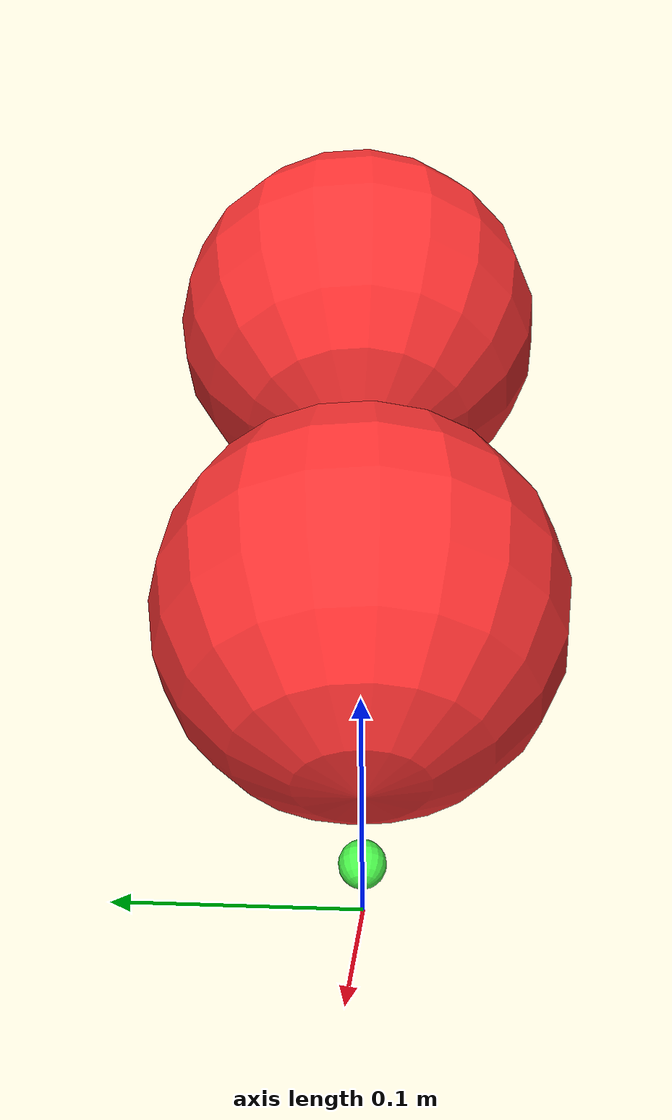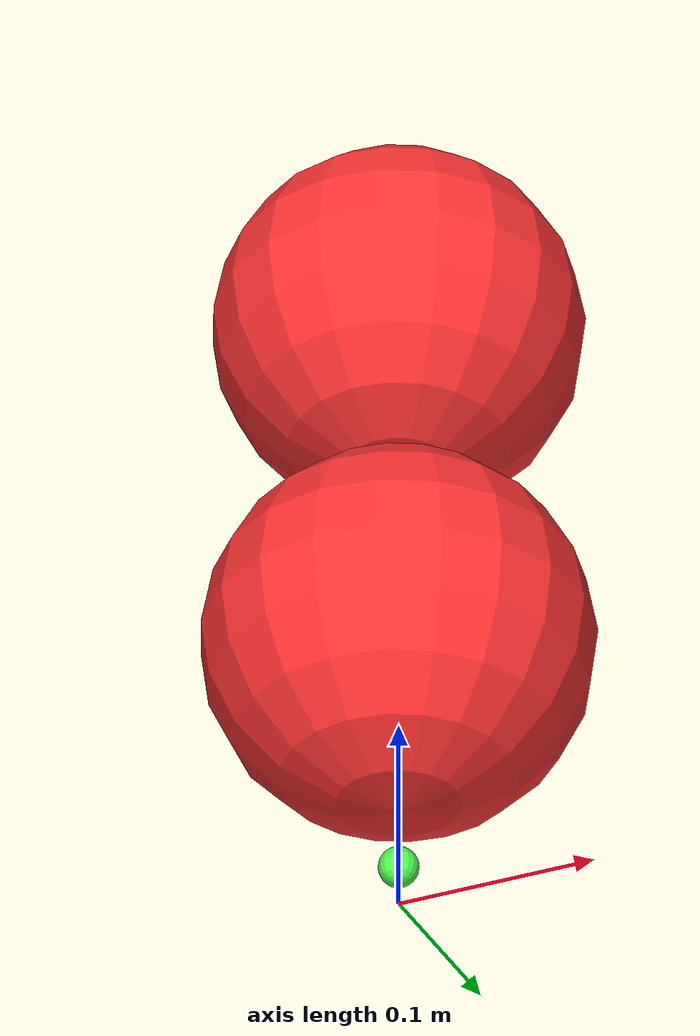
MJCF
<mujoco model="demo">
	<compiler angle="radian" autolimits="true" />
    <!-- disable gravity -->
    <option gravity="0 0 0"/>
    <actuator>

        <motor joint="joint_right_hand"         name="torque_right_hand"    ctrllimited="true"     ctrlrange="-80.0 80.0"/>
        <motor joint="joint_right_hand_y"       name="torque_right_hand_y"  ctrllimited="true"     ctrlrange="-80.0 80.0"/>
        <motor joint="joint_right_hand_z"       name="torque_right_hand_z"  ctrllimited="true"     ctrlrange="-80.0 80.0"/>
        <motor joint="joint_right_hand_r"       name="torque_right_hand_r"  ctrllimited="true"     ctrlrange="-80.0 80.0"/>
        <motor joint="joint_right_hand_p"       name="torque_right_hand_p"  ctrllimited="true"     ctrlrange="-80.0 80.0"/>
        <motor joint="joint_right_hand_yw"      name="torque_right_hand_yw" ctrllimited="true"     ctrlrange="-80.0 80.0"/>

        <motor joint="joint_left_hand"         name="torque_left_hand"    ctrllimited="true"     ctrlrange="-80.0 80.0"/>
        <motor joint="joint_left_hand_y"       name="torque_left_hand_y"  ctrllimited="true"     ctrlrange="-80.0 80.0"/>
        <motor joint="joint_left_hand_z"       name="torque_left_hand_z"  ctrllimited="true"     ctrlrange="-80.0 80.0"/>
        <motor joint="joint_left_hand_r"       name="torque_left_hand_r"  ctrllimited="true"     ctrlrange="-80.0 80.0"/>
        <motor joint="joint_left_hand_p"       name="torque_left_hand_p"  ctrllimited="true"     ctrlrange="-80.0 80.0"/>
        <motor joint="joint_left_hand_yw"      name="torque_left_hand_yw" ctrllimited="true"     ctrlrange="-80.0 80.0"/>
    </actuator>

    <asset>
        <mesh file="meshes/hand.stl" name="right_hand_mesh" scale="0.002 0.002 0.002"/>
        <mesh file="meshes/hand.stl" name="left_hand_mesh" scale="0.002 -0.002 0.002"/>
        <material name="MatMetal" specular="1" shininess="0.3" rgba="0.9 0.9 0.9 1" />
    </asset>

    <worldbody>
        <body name="floating_base" pos="0.0 0.0 0.02">
        <site name="right_center" pos="0 0 0" size="0.01" rgba="0.3 1.0 0.3 1" group="2" quat="1.0 0.0 0.0 0.0"/>
        <site name="left_center" pos="0 0 0" size="0.01" rgba="0.3 1.0 0.3 1" group="2" quat="1.0 0.0 0.0 0.0"/>
        <body>
            <inertial pos="0 0 0" mass="1.0e-6" diaginertia="1.0e-9 1.0e-9 1.0e-9"/>
        <body>
            <inertial pos="0 0 0" mass="1.0e-6" diaginertia="1.0e-9 1.0e-9 1.0e-9"/>
        <body>
            <inertial pos="0 0 0" mass="1.0e-6" diaginertia="1.0e-9 1.0e-9 1.0e-9"/>
        <body>
            <inertial pos="0 0 0" mass="1.0e-6" diaginertia="1.0e-9 1.0e-9 1.0e-9"/>
        <body>
            <inertial pos="0 0 0" mass="1.0e-6" diaginertia="1.0e-9 1.0e-9 1.0e-9"/>
        <body name="base" pos="0 0 0.23">
            <inertial pos="0 0 0" mass="1.0e-1" diaginertia="1.0e-3 1.0e-3 1.0e-3"/>

            <geom type="sphere" size="0.1" pos="0 0 0.1"
                rgba="1.0 0.2 0.2 1"
                contype="0" conaffinity="0" group="1"
                />
            <geom type="sphere" size="0.1" pos="0 0 -0.1"
                rgba="1.0 0.2 0.2 1"
                contype="0" conaffinity="0" group="1"
                />

            <body pos="0.25 -0.25 -0.1">
                <joint name="joint_right_hand" axis="1 0 0"
                    type="slide" limited="true" range="-1.0 1.0"
                    armature="0" stiffness="0.0" damping="0.0"
                    />
                <inertial pos="0 0 0" mass="1.0e-6" diaginertia="1.0e-9 1.0e-9 1.0e-9"/>
            <body>
                <joint name="joint_right_hand_y" axis="0 1 0"
                    type="slide" limited="true" range="-1.0 1.0"
                    armature="0" stiffness="0.0" damping="0.0"
                    />
                <inertial pos="0 0 0" mass="1.0e-6" diaginertia="1.0e-9 1.0e-9 1.0e-9"/>
            <body>
                <joint name="joint_right_hand_z" axis="0 0 1"
                    type="slide" limited="true" range="-0.5 1.0"
                    armature="0" stiffness="0.0" damping="0.0"
                    />
                <inertial pos="0 0 0" mass="1.0e-6" diaginertia="1.0e-9 1.0e-9 1.0e-9"/>
            <body>
                <joint name="joint_right_hand_r" axis="1 0 0"
                    type="hinge" limited="true" range="-3.14 3.14"
                    armature="0" stiffness="0.0" damping="0.0"
                    />
                <inertial pos="0 0 0" mass="1.0e-6" diaginertia="1.0e-9 1.0e-9 1.0e-9"/>
            <body>
                <joint name="joint_right_hand_p" axis="0 1 0"
                    type="hinge" limited="true" range="-3.14 3.14"
                    armature="0" stiffness="0.0" damping="0.0"
                    />
                <inertial pos="0 0 0" mass="1.0e-6" diaginertia="1.0e-9 1.0e-9 1.0e-9"/>
            <body name="right_arm" pos="0 0 0">
                <inertial pos="0 0 0" mass="1.0e-0" diaginertia="1.0e-4 1.0e-4 1.0e-4"/>
                <!--     pos="-0.03 0.0 0.03" type="mesh" mesh="right_hand_mesh" quat="0.0 0.0 0 1.0" -->
                <!--     group="1" contype="0" conaffinity="0" -->
                <!--     rgba="1.0 0.2 0.2 0.0" -->
                <joint name="joint_right_hand_yw" axis="0 0 1"
                    type="hinge" limited="true" range="-3.14 3.14"
                    armature="0" stiffness="0.0" damping="0.0"
                    />
                <body name="right_eef_point" pos="0 0 0">
                    <body name="right_gripper_mount" pos="0 0 0" quat="-0.5 -0.5 0.5 0.5">
                        <camera mode="fixed" name="stereo_l_right_hand" pos="-0.05 -0.1 0.0" quat="1 0 0 0" fovy="120"/>
                        <camera mode="fixed" name="stereo_r_right_hand" pos="0.05 -0.1 0.0" quat="1 0 0 0" fovy="120"/>
                    </body>
                </body>
            </body>
            </body>
            </body>
            </body>
            </body>
            </body>

            <body pos="0.25 0.25 -0.1">
                <joint name="joint_left_hand" axis="1 0 0"
                    type="slide" limited="true" range="-1.0 1.0"
                    armature="0" stiffness="0.0" damping="0.0"
                    />
                <inertial pos="0 0 0" mass="1.0e-6" diaginertia="1.0e-9 1.0e-9 1.0e-9"/>
            <body>
                <joint name="joint_left_hand_y" axis="0 1 0"
                    type="slide" limited="true" range="-1.0 1.0"
                    armature="0" stiffness="0.0" damping="0.0"
                    />
                <inertial pos="0 0 0" mass="1.0e-6" diaginertia="1.0e-9 1.0e-9 1.0e-9"/>
            <body>
                <joint name="joint_left_hand_z" axis="0 0 1"
                    type="slide" limited="true" range="-0.5 1.0"
                    armature="0" stiffness="0.0" damping="0.0"
                    />
                <inertial pos="0 0 0" mass="1.0e-6" diaginertia="1.0e-9 1.0e-9 1.0e-9"/>
            <body>
                <joint name="joint_left_hand_r" axis="1 0 0"
                    type="hinge" limited="true" range="-3.14 3.14"
                    armature="0" stiffness="0.0" damping="0.0"
                    />
                <inertial pos="0 0 0" mass="1.0e-6" diaginertia="1.0e-9 1.0e-9 1.0e-9"/>
            <body>
                <joint name="joint_left_hand_p" axis="0 1 0"
                    type="hinge" limited="true" range="-3.14 3.14"
                    armature="0" stiffness="0.0" damping="0.0"
                    />
                <inertial pos="0 0 0" mass="1.0e-6" diaginertia="1.0e-9 1.0e-9 1.0e-9"/>
            <body name="left_arm" pos="0 0 0">
                <inertial pos="0 0 0" mass="1.0e-0" diaginertia="1.0e-4 1.0e-4 1.0e-4"/>
                <!--     pos="-0.03 0.0 -0.03" type="mesh" mesh="left_hand_mesh" quat="0.0 0.0 0 1.0" -->
                <!--     group="1" contype="0" conaffinity="0" -->
                <!--     rgba="1.0 0.2 0.2 0.0" -->
                <joint name="joint_left_hand_yw" axis="0 0 1"
                    type="hinge" limited="true" range="-3.14 3.14"
                    armature="0" stiffness="0.0" damping="0.0"
                    />
                <body name="left_eef_point" pos="0 0 -0.06">
                    <body name="left_gripper_mount" pos="0 0 0" quat="0.5 -0.5 -0.5 0.5">
                        <camera mode="fixed" name="stereo_l_left_hand" pos="0.05 0.1 0.0" quat="0 0 0 1" fovy="120"/>
                        <camera mode="fixed" name="stereo_r_left_hand" pos="-0.05 0.1 0.0" quat="0 0 0 1" fovy="120"/>
                    </body>
                </body>
            </body>
            </body>
            </body>
            </body>
            </body>
            </body>

        </body>
        </body>
        </body>
        </body>
        </body>
        </body>

        </body>
    </worldbody>
</mujoco>
